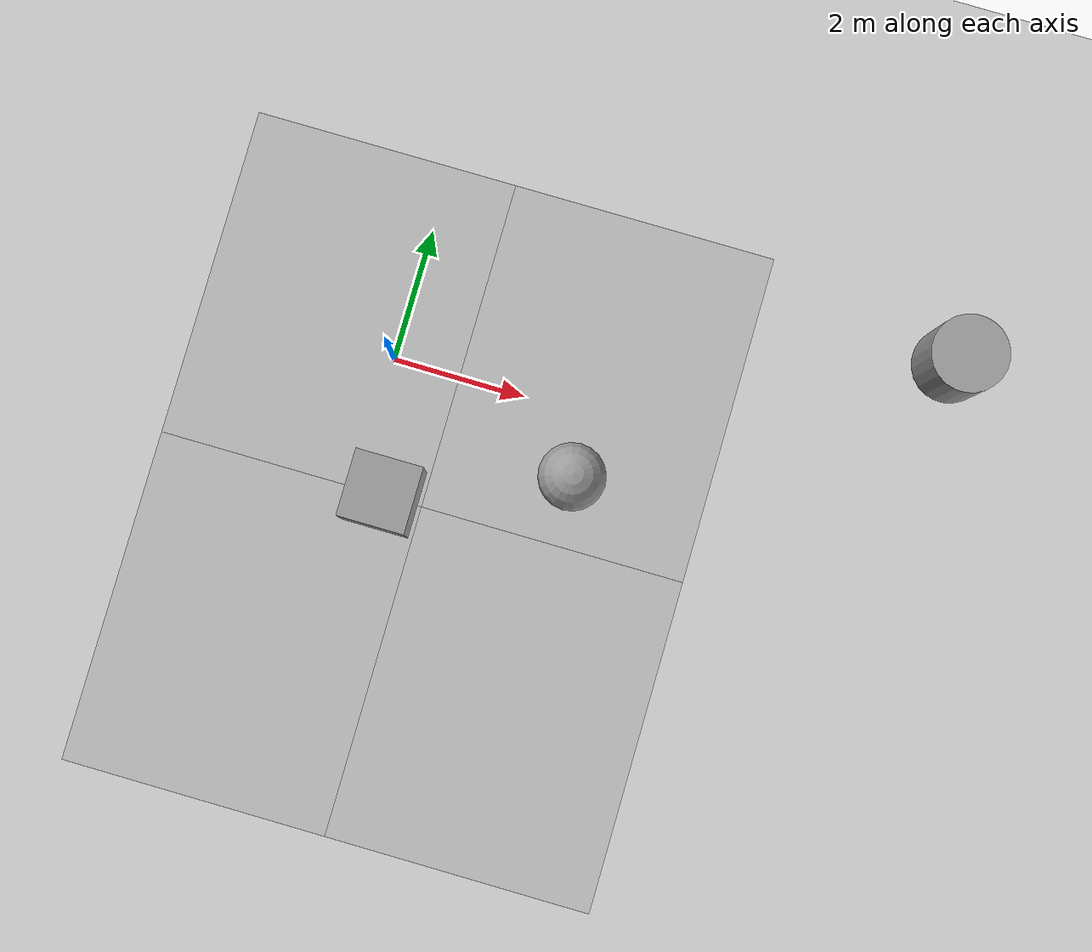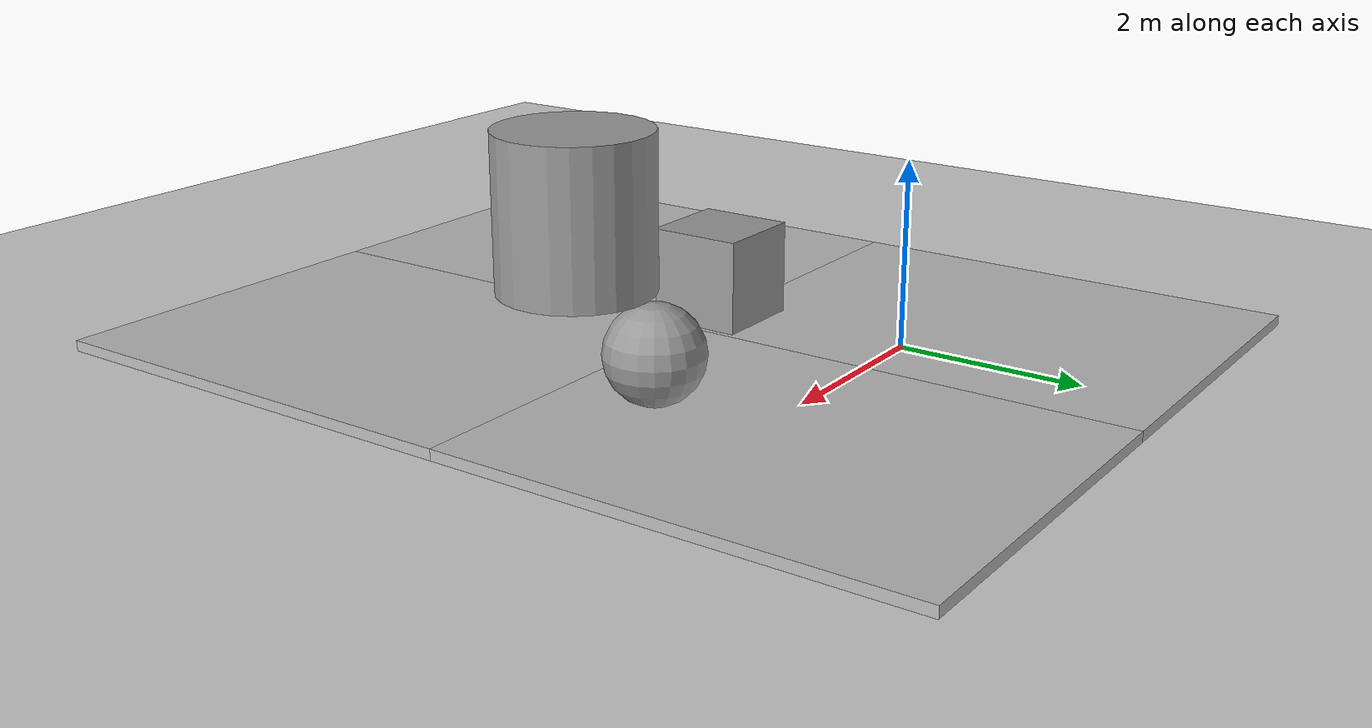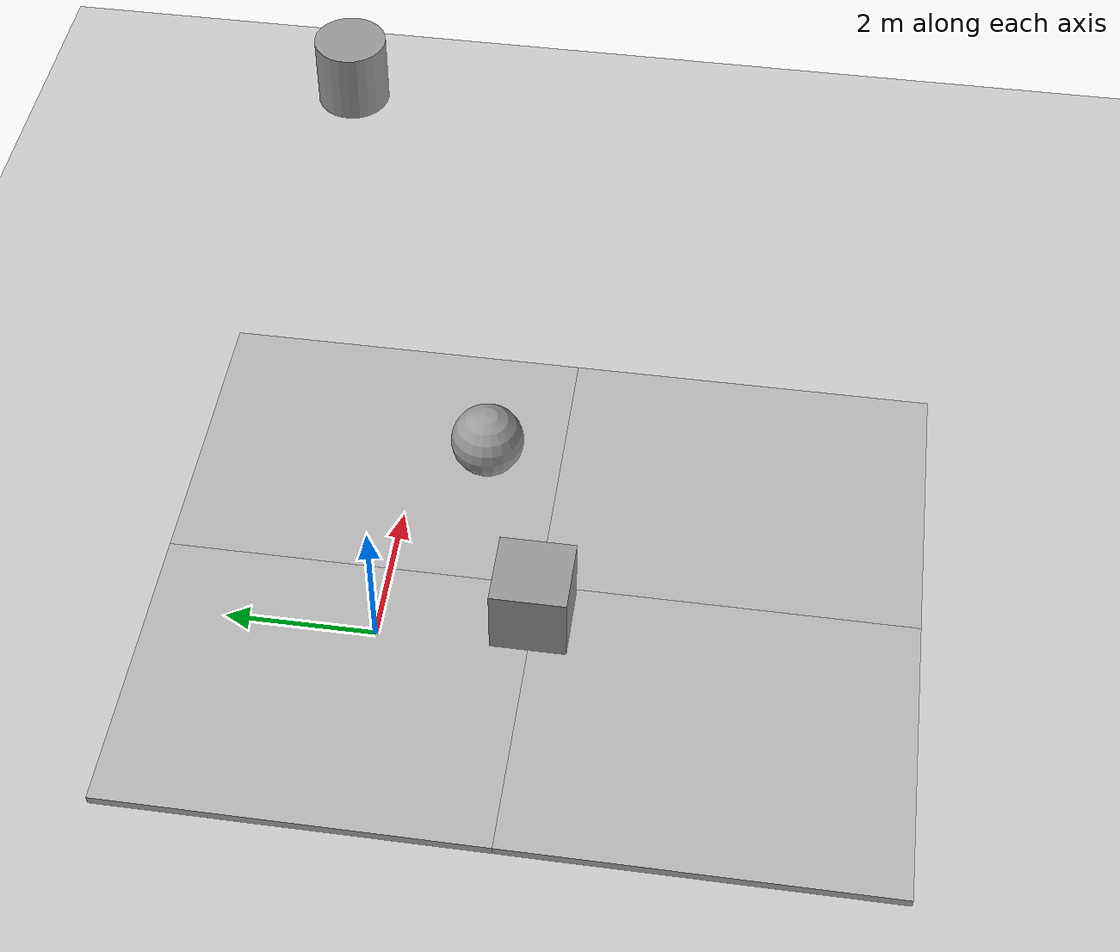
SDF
<sdf version="1.4">
 <world name="default">
  <model name="ground_plane">
   <static>1</static>
   <link name="link">
    <collision name="collision">
     <geometry><plane><normal>0 0 1</normal><size>100 100</size></plane></geometry>
     <surface><friction><ode><mu>100</mu><mu2>50</mu2></ode></friction></surface>
    </collision>
    <visual name="visual">
     <cast_shadows>0</cast_shadows>
     <geometry><plane><normal>0 0 1</normal><size>100 100</size></plane></geometry>
     <material>
      <script><uri>file://media/materials/scripts/gazebo.material</uri><name>Gazebo/Grey</name></script>
     </material>
    </visual>
    <velocity_decay><linear>0</linear><angular>0</angular></velocity_decay>
   </link>
  </model>
  <model name="unit_box_1">
   <pose>0.43867 -2 0.6 0 -0 0</pose>
   <link name="link">
    <inertial>
     <mass>1</mass>
     <inertia><ixx>1</ixx><ixy>0</ixy><ixz>0</ixz><iyy>1</iyy><iyz>0</iyz><izz>1</izz></inertia>
    </inertial>
    <collision name="collision"><geometry><box><size>1 1 1</size></box></geometry></collision>
    <visual name="visual">
     <geometry><box><size>1 1 1</size></box></geometry>
     <material>
      <script><uri>file://media/materials/scripts/gazebo.material</uri><name>Gazebo/Grey</name></script>
     </material>
    </visual>
    <velocity_decay><linear>0</linear><angular>0</angular></velocity_decay>
   </link>
   <static>0</static>
  </model>
  <model name="unit_sphere_1">
   <pose>3 -1 0.6 0 -0 0</pose>
   <link name="link">
    <inertial>
     <mass>1</mass>
     <inertia><ixx>1</ixx><ixy>0</ixy><ixz>0</ixz><iyy>1</iyy><iyz>0</iyz><izz>1</izz></inertia>
    </inertial>
    <collision name="collision"><geometry><sphere><radius>0.5</radius></sphere></geometry></collision>
    <visual name="visual">
     <geometry><sphere><radius>0.5</radius></sphere></geometry>
     <material>
      <script><uri>file://media/materials/scripts/gazebo.material</uri><name>Gazebo/Grey</name></script>
     </material>
    </visual>
    <velocity_decay><linear>0</linear><angular>0</angular></velocity_decay>
   </link>
   <static>0</static>
  </model>
  <model name="unit_cylinder_1">
   <pose>7.30451 1.57908 3.32932 0 -0 1.41972</pose>
   <link name="link">
    <inertial>
     <mass>1</mass>
     <inertia><ixx>1</ixx><ixy>0</ixy><ixz>0</ixz><iyy>1</iyy><iyz>0</iyz><izz>1</izz></inertia>
    </inertial>
    <collision name="collision">
     <geometry><cylinder><radius>0.5</radius><length>6.65865</length></cylinder></geometry>
    </collision>
    <visual name="visual">
     <geometry><cylinder><radius>0.5</radius><length>1</length></cylinder></geometry>
     <material>
      <script><uri>file://media/materials/scripts/gazebo.material</uri><name>Gazebo/Grey</name></script>
     </material>
    </visual>
    <velocity_decay><linear>0</linear><angular>0</angular></velocity_decay>
   </link>
   <static>0</static>
  </model>
  <model name="mud_box">
   <static>1</static>
   <link name="link">
    <collision name="collision"><geometry><box><size>8 10 0.2</size></box></geometry></collision>
    <visual name="visual_1">
     <pose>-2 2.5 0 0 -0 0</pose>
     <cast_shadows>0</cast_shadows>
     <geometry><box><size>4 5 0.2</size></box></geometry>
     <material>
      <script>
       <uri>model://mud_box/materials/scripts</uri>
       <uri>model://mud_box/materials/textures</uri>
       <name>vrc/mud</name>
      </script>
     </material>
    </visual>
    <visual name="visual_2">
     <pose>2 2.5 0 0 -0 0</pose>
     <cast_shadows>0</cast_shadows>
     <geometry><box><size>4 5 0.2</size></box></geometry>
     <material>
      <script>
       <uri>model://mud_box/materials/scripts</uri>
       <uri>model://mud_box/materials/textures</uri>
       <name>vrc/mud</name>
      </script>
     </material>
    </visual>
    <visual name="visual_3">
     <pose>2 -2.5 0 0 -0 0</pose>
     <cast_shadows>0</cast_shadows>
     <geometry><box><size>4 5 0.2</size></box></geometry>
     <material>
      <script>
       <uri>model://mud_box/materials/scripts</uri>
       <uri>model://mud_box/materials/textures</uri>
       <name>vrc/mud</name>
      </script>
     </material>
    </visual>
    <visual name="visual_4">
     <pose>-2 -2.5 0 0 -0 0</pose>
     <cast_shadows>0</cast_shadows>
     <geometry><box><size>4 5 0.2</size></box></geometry>
     <material>
      <script>
       <uri>model://mud_box/materials/scripts</uri>
       <uri>model://mud_box/materials/textures</uri>
       <name>vrc/mud</name>
      </script>
     </material>
    </visual>
    <velocity_decay><linear>0</linear><angular>0</angular></velocity_decay>
   </link>
   <pose>1 -2 0 0 -0 0</pose>
  </model>
 </world>
</sdf>
